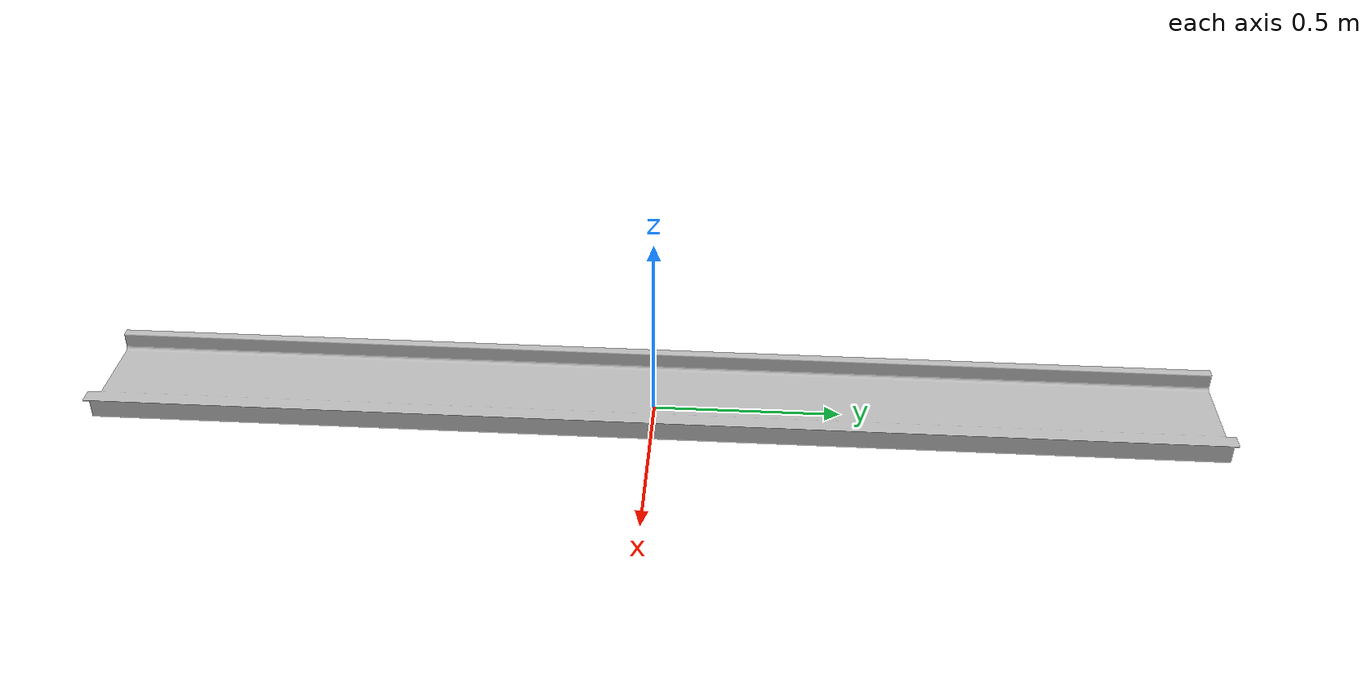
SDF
<?xml version='1.0'?>
<sdf version='1.4'>
  <model name='Rail'>
    <link name='Rail_link'>
      <pose>0 0 0 0 0 0</pose>
      <inertial>
        <pose>0 0 0 0 0 0</pose>
        <mass>1.0</mass>
        <inertia>
          <ixx>0.75086944724</ixx>
          <ixy>0</ixy>
          <ixz>0</ixz>
          <iyy>0.76026106805</iyy>
          <iyz>0</iyz>
          <izz>0.01059046669</izz>
        </inertia>
      </inertial>
      <collision name='Rail_link_collision'>
        <pose>0 0 0 0 0 0</pose>
        <geometry>
          <mesh>
            <scale>1 1 1</scale>
            <uri>model://rail/meshes/Rail-small.stl</uri>
          </mesh>
        </geometry>
      </collision>
      <visual name='Rail_link_visual'>
        <pose>0 0 0 0 0 0</pose>
        <geometry>
          <mesh>
            <scale>1 1 1</scale>
            <uri>model://rail/meshes/Rail-small.stl</uri>
          </mesh>
        </geometry>
      </visual>
    </link>
    <pose frame=''>0 0 0 0 0 0</pose>
  </model>
</sdf>
